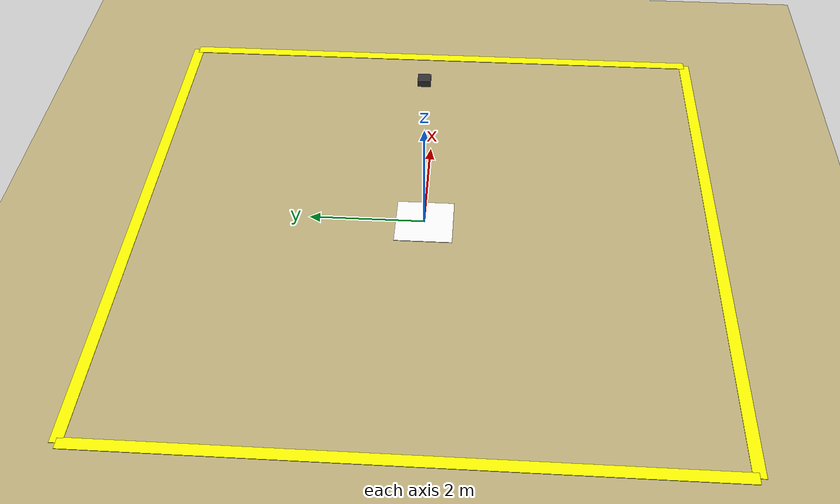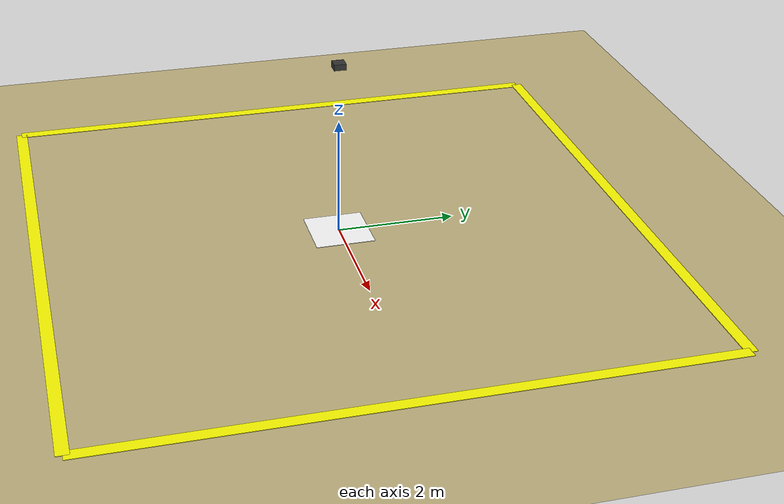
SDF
<?xml version="1.0" ?>
<sdf version="1.8">
  <world name="landing_world">
    <plugin filename="gz-sim-physics-system" name="gz::sim::systems::Physics"/>
    <plugin filename="gz-sim-scene-broadcaster-system" name="gz::sim::systems::SceneBroadcaster"/>
    <plugin filename="gz-sim-sensors-system" name="gz::sim::systems::Sensors">
      <render_engine>ogre</render_engine>
    </plugin>
    <plugin filename="gz-sim-user-commands-system" name="gz::sim::systems::UserCommands"/>

    <light type="directional" name="sun">
      <cast_shadows>true</cast_shadows>
      <pose>0 0 10 0 0 0</pose>
      <diffuse>0.8 0.8 0.8 1</diffuse>
      <direction>-0.5 0.1 -0.9</direction>
    </light>

    <model name="ground_plane">
      <static>true</static>
      <link name="link">
        <collision name="collision"><geometry><plane><normal>0 0 1</normal><size>1000 1000</size></plane></geometry></collision>
        <visual name="visual">
          <geometry><plane><normal>0 0 1</normal><size>1000 1000</size></plane></geometry>
          <material><ambient>0.76 0.70 0.50 1</ambient><diffuse>0.76 0.70 0.50 1</diffuse></material>
        </visual>
      </link>
    </model>

    <model name="drone_camera">
      <static>false</static>
      <pose>0 0 3.0 0 0 0</pose>
      <link name="link">
        <gravity>false</gravity>
        <inertial><mass>1.0</mass><inertia><ixx>0.01</ixx><iyy>0.01</iyy><izz>0.01</izz></inertia></inertial>
        <collision name="collision"><geometry><box><size>0.2 0.2 0.1</size></box></geometry></collision>
        <visual name="visual"><geometry><box><size>0.2 0.2 0.1</size></box></geometry><material><ambient>0.2 0.2 0.2 1</ambient><diffuse>0.2 0.2 0.2 1</diffuse></material></visual>
        <sensor name="camera" type="camera">
          <pose>0 0 -0.06 0 1.5708 0</pose>
          <camera>
            <horizontal_fov>1.047</horizontal_fov>
            <image><width>640</width><height>480</height></image>
            <clip><near>0.1</near><far>100</far></clip>
          </camera>
          <always_on>1</always_on>
          <update_rate>30</update_rate>
          <visualize>true</visualize>
          <topic>/camera/image_raw</topic>
        </sensor>
      </link>
      <plugin filename="gz-sim-velocity-control-system" name="gz::sim::systems::VelocityControl">
        <topic>/cmd_vel</topic>
        <use_local_frame>true</use_local_frame>
      </plugin>
      <plugin filename="gz-sim-odometry-publisher-system" name="gz::sim::systems::OdometryPublisher">
        <odom_frame>world</odom_frame>
        <robot_base_frame>link</robot_base_frame>
        <odom_topic>/odom</odom_topic>
        <odom_publish_frequency>30</odom_publish_frequency>
        <dimensions>3</dimensions>
      </plugin>
    </model>

    <model name="landing_base">
      <static>false</static>
      <pose>0 0 0.005 0 0 0</pose>
      <link name="link">
        <inertial><mass>50.0</mass><inertia><ixx>1.0</ixx><iyy>1.0</iyy><izz>1.0</izz></inertia></inertial>
        <collision name="collision"><geometry><box><size>1.0 1.0 0.01</size></box></geometry></collision>
        <visual name="visual">
          <geometry><box><size>1.0 1.0 0.01</size></box></geometry>
          <material><diffuse>1 1 1 1</diffuse><pbr><metal><albedo_map>base_station.png</albedo_map></metal></pbr></material>
        </visual>
      </link>
    </model>

    <model name="boundary_lines">
      <static>true</static>
      <pose>0 0 0.01 0 0 0</pose>
      <link name="link">
        <visual name="top"><pose>0 5 0 0 0 0</pose><geometry><box><size>10 0.2 0.01</size></box></geometry><material><ambient>1 1 0 1</ambient><diffuse>1 1 0 1</diffuse></material></visual>
        <visual name="bottom"><pose>0 -5 0 0 0 0</pose><geometry><box><size>10 0.2 0.01</size></box></geometry><material><ambient>1 1 0 1</ambient><diffuse>1 1 0 1</diffuse></material></visual>
        <visual name="left"><pose>-5 0 0 0 0 0</pose><geometry><box><size>0.2 10 0.01</size></box></geometry><material><ambient>1 1 0 1</ambient><diffuse>1 1 0 1</diffuse></material></visual>
        <visual name="right"><pose>5 0 0 0 0 0</pose><geometry><box><size>0.2 10 0.01</size></box></geometry><material><ambient>1 1 0 1</ambient><diffuse>1 1 0 1</diffuse></material></visual>
      </link>
    </model>
  </world>
</sdf>
